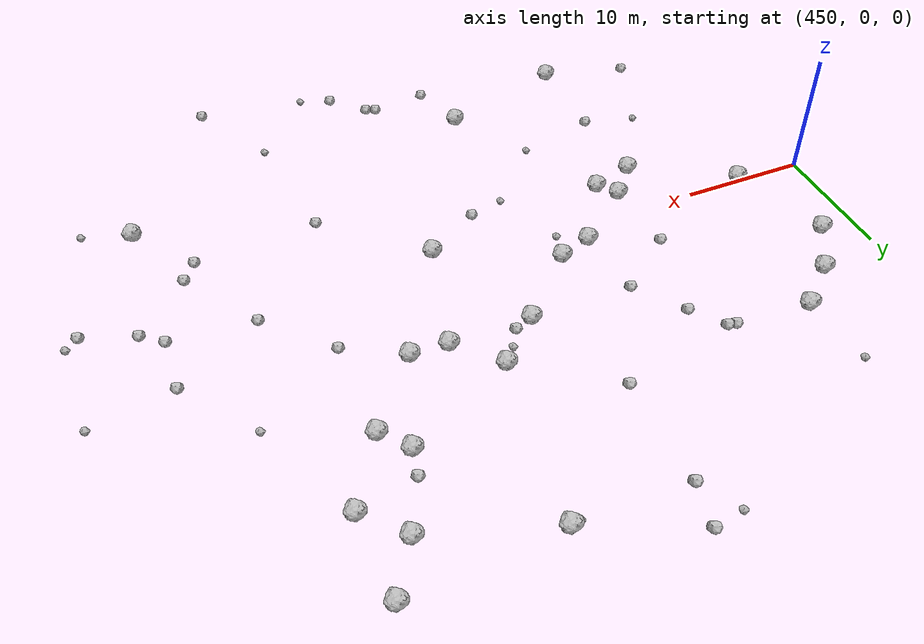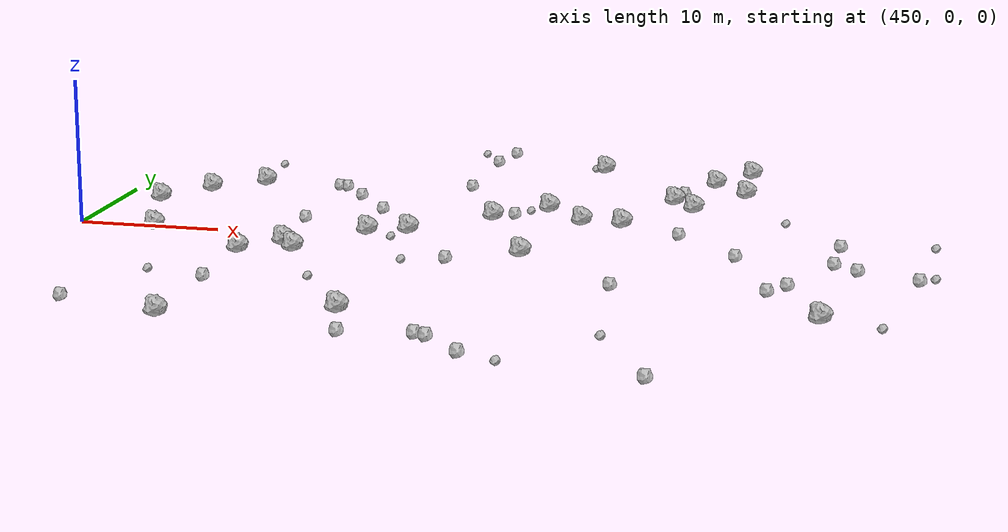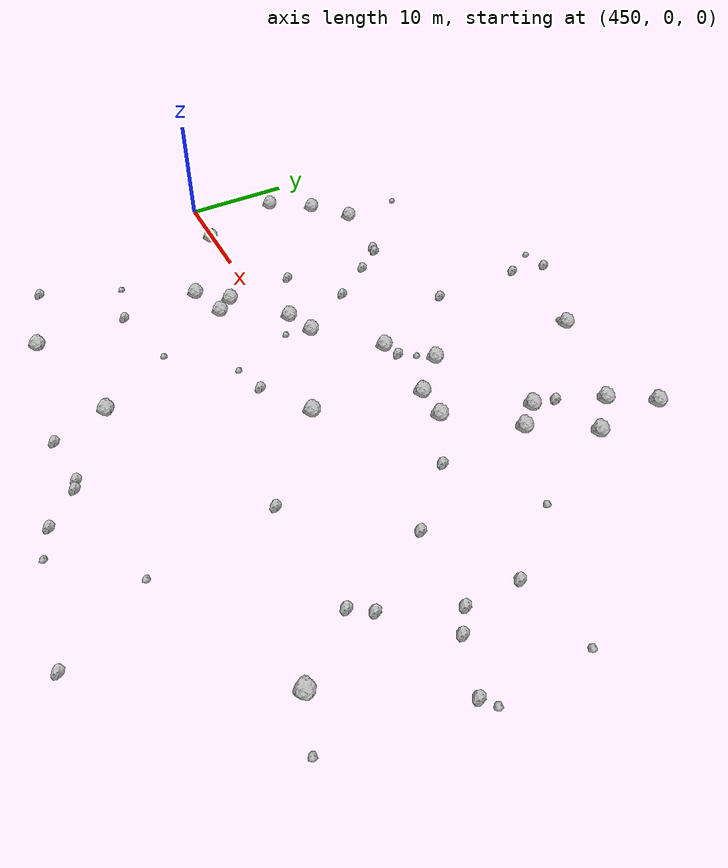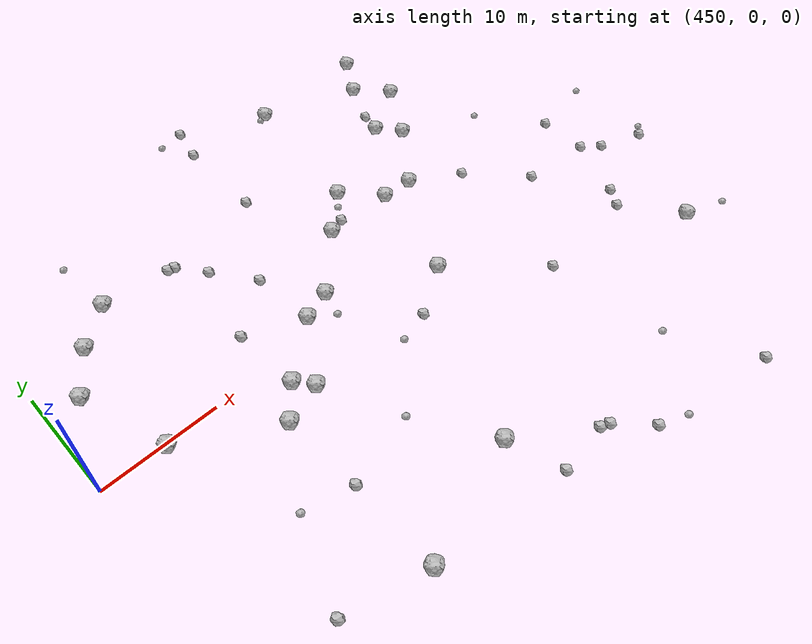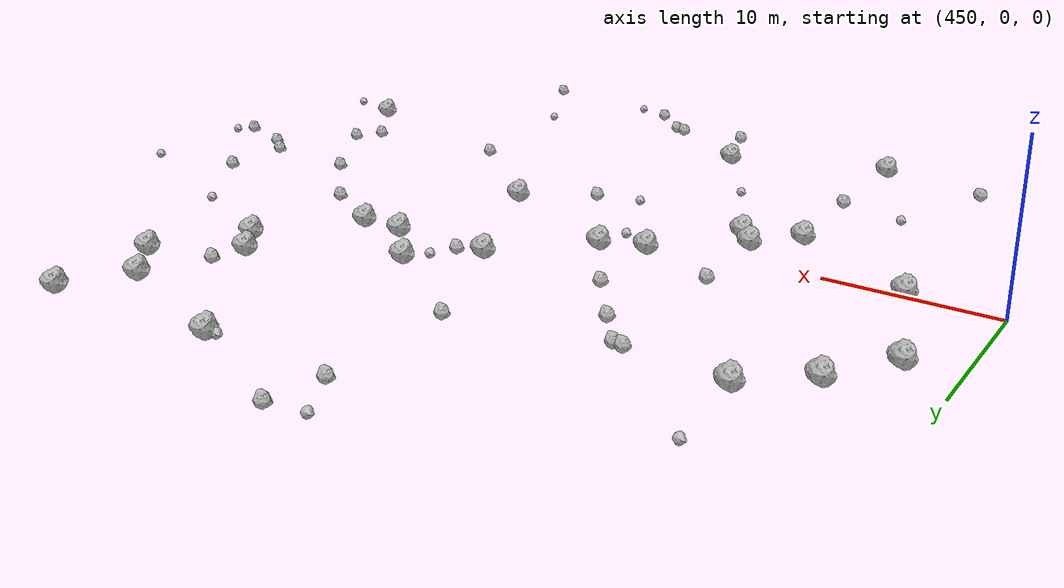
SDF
<sdf version="1.6">
 <world name="default">
  <include><uri>model://sun</uri></include>
  <model name="rock1_12_4">
   <include><uri>model://rock1</uri><pose>491.169171020846 12.811386313102368 0.5 0 0 0</pose></include>
  </model>
  <model name="rock1_12_5">
   <include><uri>model://rock1</uri><pose>482.79349450710436 23.796372076380912 0.5 0 0 0</pose></include>
  </model>
  <model name="rock1_12_6">
   <include><uri>model://rock1</uri><pose>491.72966500653223 20.763326160089406 0.5 0 0 0</pose></include>
  </model>
  <model name="rock1_12_7">
   <include><uri>model://rock1</uri><pose>465.50911445586553 -2.2703378805472987 0.5 0 0 0</pose></include>
  </model>
  <model name="rock1_12_8">
   <include><uri>model://rock1</uri><pose>493.9964711986045 24.40289964173492 0.5 0 0 0</pose></include>
  </model>
  <model name="rock1_12_9">
   <include><uri>model://rock1</uri><pose>494.30071930814876 17.963198420278744 0.5 0 0 0</pose></include>
  </model>
  <model name="rock1_12_10">
   <include><uri>model://rock1</uri><pose>481.11131339037365 10.706347999435167 0.5 0 0 0</pose></include>
  </model>
  <model name="rock1_12_11">
   <include><uri>model://rock1</uri><pose>463.23700799069945 -4.8797347856649225 0.5 0 0 0</pose></include>
  </model>
  <model name="rock1_12_12">
   <include><uri>model://rock1</uri><pose>458.74417668119 14.09150039154779 0.5 0 0 0</pose></include>
  </model>
  <model name="rock1_12_13">
   <include><uri>model://rock1</uri><pose>486.93324889562314 7.421081514580912 0.5 0 0 0</pose></include>
  </model>
  <model name="rock1_12_14">
   <include><uri>model://rock1</uri><pose>455.5071195039271 -0.31816290063148855 0.5 0 0 0</pose></include>
  </model>
  <model name="rock1_12_15">
   <include><uri>model://rock1</uri><pose>466.68812959552923 -3.7582262782984976 0.5 0 0 0</pose></include>
  </model>
  <model name="rock1_12_16">
   <include><uri>model://rock1</uri><pose>472.90252744274574 2.5926864635345623 0.5 0 0 0</pose></include>
  </model>
  <model name="rock1_12_17">
   <include><uri>model://rock1</uri><pose>477.7440058510455 7.492068688767027 0.5 0 0 0</pose></include>
  </model>
  <model name="rock1_12_18">
   <include><uri>model://rock1</uri><pose>463.48390267627127 -19.942721385297148 0.5 0 0 0</pose></include>
  </model>
  <model name="rock1_12_19">
   <include><uri>model://rock1</uri><pose>452.92239449062544 7.551668359983651 0.5 0 0 0</pose></include>
  </model>
  <model name="rock1_12_20">
   <include><uri>model://rock1</uri><pose>484.07381021498094 7.523501611359528 0.5 0 0 0</pose></include>
  </model>
  <model name="rock1_12_21">
   <include><uri>model://rock1</uri><pose>470.2494687730863 1.663503590051043 0.5 0 0 0</pose></include>
  </model>
  <model name="rock1_12_22">
   <include><uri>model://rock1</uri><pose>481.7412677479055 -1.697258047250429 0.5 0 0 0</pose></include>
  </model>
  <model name="rock1_12_23">
   <include><uri>model://rock1</uri><pose>489.4918190052946 14.866811025679617 0.5 0 0 0</pose></include>
  </model>
  <model name="rock1_12_24">
   <include><uri>model://rock1</uri><pose>455.46183652578975 11.32476706082015 0.5 0 0 0</pose></include>
  </model>
  <model name="rock1_12_25">
   <include><uri>model://rock1</uri><pose>473.8032601622214 -16.731610079426908 0.5 0 0 0</pose></include>
  </model>
  <model name="rock1_12_26">
   <include><uri>model://rock1</uri><pose>502.3577558474296 -12.466372091200256 0.5 0 0 0</pose></include>
  </model>
  <model name="rock2_12_0">
   <include><uri>model://rock2</uri><pose>475.2300482676153 -21.38463999819686 0.3 0 0 0</pose></include>
  </model>
  <model name="rock2_12_1">
   <include><uri>model://rock2</uri><pose>475.01259898750794 27.286656434743307 0.3 0 0 0</pose></include>
  </model>
  <model name="rock2_12_2">
   <include><uri>model://rock2</uri><pose>503.73191151169056 -1.6241440317162628 0.3 0 0 0</pose></include>
  </model>
  <model name="rock2_12_3">
   <include><uri>model://rock2</uri><pose>456.5535543641955 -18.150120478774518 0.3 0 0 0</pose></include>
  </model>
  <model name="rock2_12_4">
   <include><uri>model://rock2</uri><pose>464.63699241100096 13.676743871307103 0.3 0 0 0</pose></include>
  </model>
  <model name="rock2_12_5">
   <include><uri>model://rock2</uri><pose>477.34730522166353 -4.422922327358233 0.3 0 0 0</pose></include>
  </model>
  <model name="rock2_12_6">
   <include><uri>model://rock2</uri><pose>469.7108042146907 7.50393282480465 0.3 0 0 0</pose></include>
  </model>
  <model name="rock2_12_7">
   <include><uri>model://rock2</uri><pose>474.2650430601081 15.58809792081049 0.3 0 0 0</pose></include>
  </model>
  <model name="rock2_12_8">
   <include><uri>model://rock2</uri><pose>474.3205351534951 24.012562954140883 0.3 0 0 0</pose></include>
  </model>
  <model name="rock2_12_9">
   <include><uri>model://rock2</uri><pose>488.9294749416322 -8.302865868830661 0.3 0 0 0</pose></include>
  </model>
  <model name="rock2_12_10">
   <include><uri>model://rock2</uri><pose>479.7253599417314 -20.82117139246442 0.3 0 0 0</pose></include>
  </model>
  <model name="rock2_12_11">
   <include><uri>model://rock2</uri><pose>463.4674297288186 -11.969881362494935 0.3 0 0 0</pose></include>
  </model>
  <model name="rock2_12_12">
   <include><uri>model://rock2</uri><pose>483.02619121249523 -23.70127984852602 0.3 0 0 0</pose></include>
  </model>
  <model name="rock2_12_13">
   <include><uri>model://rock2</uri><pose>494.0670597845086 -25.810310829201832 0.3 0 0 0</pose></include>
  </model>
  <model name="rock2_12_14">
   <include><uri>model://rock2</uri><pose>465.26294847290444 13.548513722010185 0.3 0 0 0</pose></include>
  </model>
  <model name="rock2_12_15">
   <include><uri>model://rock2</uri><pose>502.21943576995125 4.143543836339859 0.3 0 0 0</pose></include>
  </model>
  <model name="rock2_12_16">
   <include><uri>model://rock2</uri><pose>465.11926640528964 3.8999868912141693 0.3 0 0 0</pose></include>
  </model>
  <model name="rock2_12_17">
   <include><uri>model://rock2</uri><pose>498.6066813406626 -7.531325005011485 0.3 0 0 0</pose></include>
  </model>
  <model name="rock2_12_18">
   <include><uri>model://rock2</uri><pose>499.7059495181713 -5.920857639231407 0.3 0 0 0</pose></include>
  </model>
  <model name="rock2_12_19">
   <include><uri>model://rock2</uri><pose>495.69313466495646 0.1482376878128413 0.3 0 0 0</pose></include>
  </model>
  <model name="rock2_12_20">
   <include><uri>model://rock2</uri><pose>491.260823370814 4.8923630957020094 0.3 0 0 0</pose></include>
  </model>
  <model name="rock2_12_21">
   <include><uri>model://rock2</uri><pose>502.1458293900845 -0.3488633127506766 0.3 0 0 0</pose></include>
  </model>
  <model name="rock2_12_22">
   <include><uri>model://rock2</uri><pose>480.5059257195967 -21.147277293566297 0.3 0 0 0</pose></include>
  </model>
  <model name="rock2_12_23">
   <include><uri>model://rock2</uri><pose>507.6982188712582 -3.0822958529742053 0.3 0 0 0</pose></include>
  </model>
  <model name="rock2_12_24">
   <include><uri>model://rock2</uri><pose>489.90815511378526 16.962260519508625 0.3 0 0 0</pose></include>
  </model>
  <model name="rock2_12_25">
   <include><uri>model://rock2</uri><pose>479.18626229183695 8.058326837669128 0.3 0 0 0</pose></include>
  </model>
  <model name="rock2_12_26">
   <include><uri>model://rock2</uri><pose>467.0732798796477 11.143414999641834 0.3 0 0 0</pose></include>
  </model>
  <model name="rock3_12_0">
   <include><uri>model://rock3</uri><pose>506.0270468371945 -13.786597597475712 0.2 0 0 0</pose></include>
  </model>
  <model name="rock3_12_1">
   <include><uri>model://rock3</uri><pose>469.8367569878189 -10.382731893370124 0.2 0 0 0</pose></include>
  </model>
  <model name="rock3_12_2">
   <include><uri>model://rock3</uri><pose>474.51051921252997 -5.19913743925537 0.2 0 0 0</pose></include>
  </model>
  <model name="rock3_12_3">
   <include><uri>model://rock3</uri><pose>480.0104747529334 9.44360609589377 0.2 0 0 0</pose></include>
  </model>
  <model name="rock3_12_4">
   <include><uri>model://rock3</uri><pose>497.9845895261043 9.735715315934982 0.2 0 0 0</pose></include>
  </model>
  <model name="rock3_12_5">
   <include><uri>model://rock3</uri><pose>485.44248048280326 -24.715003989664968 0.2 0 0 0</pose></include>
  </model>
  <model name="rock3_12_6">
   <include><uri>model://rock3</uri><pose>508.36140730860603 5.29626622926736 0.2 0 0 0</pose></include>
  </model>
  <model name="rock3_12_7">
   <include><uri>model://rock3</uri><pose>482.0338545558543 23.622100232886737 0.2 0 0 0</pose></include>
  </model>
  <model name="rock3_12_8">
   <include><uri>model://rock3</uri><pose>472.6691176271762 26.841841925863307 0.2 0 0 0</pose></include>
  </model>
  <model name="rock3_12_9">
   <include><uri>model://rock3</uri><pose>458.18644270100776 19.753193305485397 0.2 0 0 0</pose></include>
  </model>
  <model name="rock3_12_10">
   <include><uri>model://rock3</uri><pose>472.25168814144746 0.35643488640767274 0.2 0 0 0</pose></include>
  </model>
  <model name="rock3_12_11">
   <include><uri>model://rock3</uri><pose>459.2857400456896 -10.969638064316975 0.2 0 0 0</pose></include>
  </model>
  <model name="rock3_12_12">
   <include><uri>model://rock3</uri><pose>508.63725150499045 -2.321893149057903 0.2 0 0 0</pose></include>
  </model>
  <model name="rock3_12_13">
   <include><uri>model://rock3</uri><pose>490.2573691127542 -18.767969362285797 0.2 0 0 0</pose></include>
  </model>
 </world>
</sdf>
